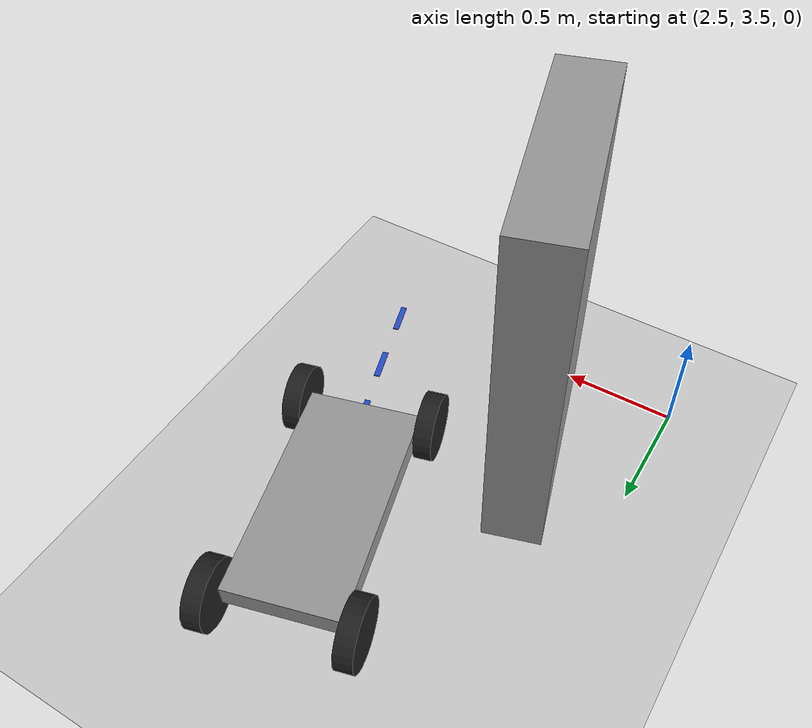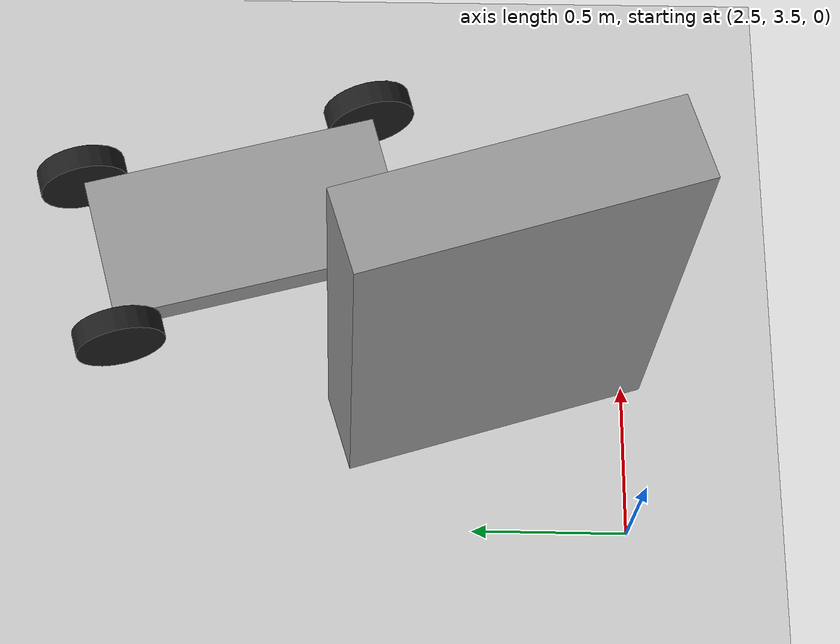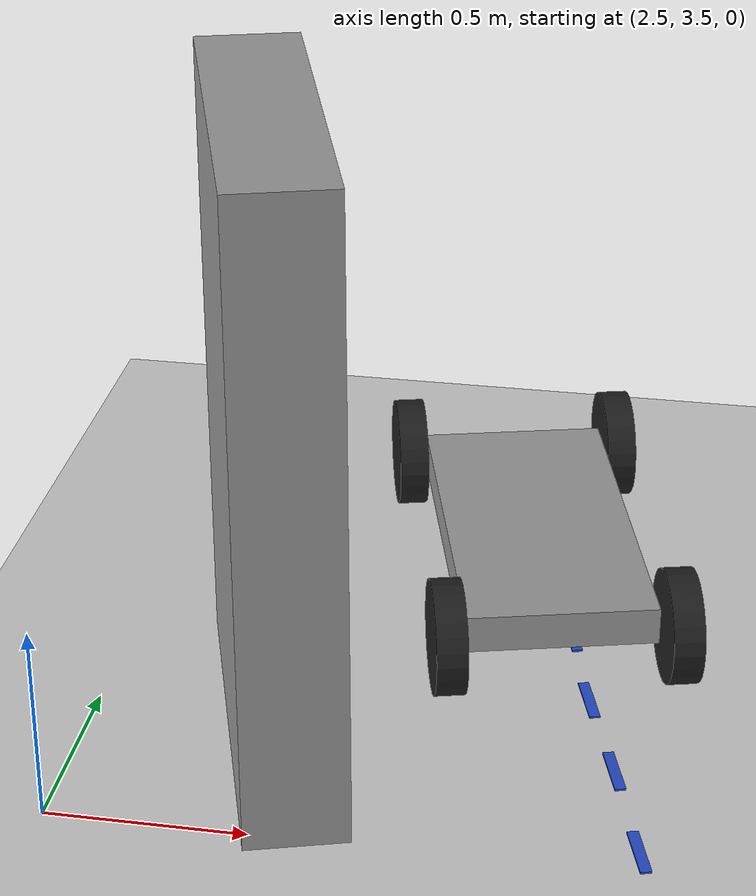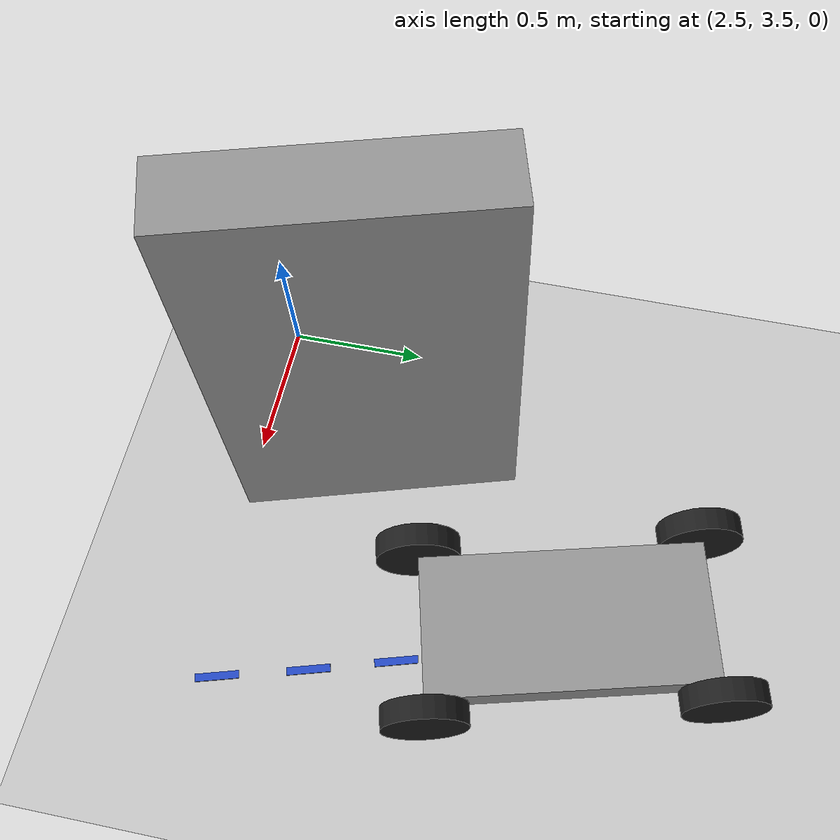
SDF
<sdf version="1.7">
 <world name="curve5">
  <model name="ground_plane">
   <static>1</static>
   <link name="link">
    <collision name="collision">
     <geometry><plane><normal>0 0 1</normal><size>100 100</size></plane></geometry>
     <surface><friction><ode><mu>100</mu><mu2>50</mu2></ode></friction></surface>
    </collision>
    <visual name="visual">
     <cast_shadows>0</cast_shadows>
     <geometry><plane><normal>0 0 1</normal><size>100 100</size></plane></geometry>
     <material>
      <script><uri>file://media/materials/scripts/gazebo.material</uri><name>Gazebo/Grey</name></script>
     </material>
    </visual>
   </link>
  </model>
  <model name="curveRoad_try4">
   <link name="link_clone_clone_clone_clone_2_clone_3_clone">
    <inertial>
     <mass>2.16157e-05</mass>
     <inertia>
      <ixx>1.43991e-09</ixx>
      <ixy>0</ixy>
      <ixz>0</ixz>
      <iyy>4.24872e-08</iyy>
      <iyz>0</iyz>
      <izz>4.38348e-08</izz>
     </inertia>
    </inertial>
    <pose>3.37828 2.67582 -7.1e-05 1.7e-05 5.8e-05 1.85957</pose>
    <visual name="visual">
     <geometry><box><size>0.153497 0.027816 0.005062</size></box></geometry>
     <material>
      <script><name>Gazebo/Blue</name><uri>file://media/materials/scripts/gazebo.material</uri></script>
      <shader type="pixel"><normal_map>__default__</normal_map></shader>
      <ambient>0 0 1 1</ambient>
      <diffuse>0 0 1 1</diffuse>
      <emissive>0 0 1 1</emissive>
      <specular>0 0 1 1</specular>
     </material>
    </visual>
    <collision name="collision">
     <geometry><box><size>0.153497 0.027816 0.005062</size></box></geometry>
     <surface>
      <friction>
       <ode><mu>1</mu><mu2>1</mu2><fdir1>0 0 0</fdir1><slip1>0</slip1><slip2>0</slip2></ode>
       <torsional>
        <coefficient>1</coefficient>
        <patch_radius>0</patch_radius>
        <surface_radius>0</surface_radius>
        <use_patch_radius>1</use_patch_radius>
        <ode><slip>0</slip></ode>
       </torsional>
      </friction>
      <bounce><restitution_coefficient>0</restitution_coefficient><threshold>1e+06</threshold></bounce>
      <contact>
       <collide_without_contact>0</collide_without_contact>
       <collide_without_contact_bitmask>1</collide_without_contact_bitmask>
       <collide_bitmask>1</collide_bitmask>
       <ode>
        <soft_cfm>0</soft_cfm>
        <soft_erp>0.2</soft_erp>
        <kp>1e+13</kp>
        <kd>1</kd>
        <max_vel>0.01</max_vel>
        <min_depth>0</min_depth>
       </ode>
       <bullet>
        <split_impulse>1</split_impulse>
        <split_impulse_penetration_threshold>-0.01</split_impulse_penetration_threshold>
        <soft_cfm>0</soft_cfm>
        <soft_erp>0.2</soft_erp>
        <kp>1e+13</kp>
        <kd>1</kd>
       </bullet>
      </contact>
     </surface>
    </collision>
   </link>
   <link name="link_clone_clone_clone_clone_2_clone_3_clone_0">
    <inertial>
     <mass>2.16157e-05</mass>
     <inertia>
      <ixx>1.43991e-09</ixx>
      <ixy>0</ixy>
      <ixz>0</ixz>
      <iyy>4.24872e-08</iyy>
      <iyz>0</iyz>
      <izz>4.38348e-08</izz>
     </inertia>
    </inertial>
    <pose>3.29222 2.98305 -7.6e-05 1.7e-05 5.8e-05 1.85957</pose>
    <visual name="visual">
     <geometry><box><size>0.153497 0.027816 0.005062</size></box></geometry>
     <material>
      <script><name>Gazebo/Blue</name><uri>file://media/materials/scripts/gazebo.material</uri></script>
      <shader type="pixel"><normal_map>__default__</normal_map></shader>
      <ambient>0 0 1 1</ambient>
      <diffuse>0 0 1 1</diffuse>
      <emissive>0 0 1 1</emissive>
      <specular>0 0 1 1</specular>
     </material>
    </visual>
    <collision name="collision">
     <geometry><box><size>0.153497 0.027816 0.005062</size></box></geometry>
     <surface>
      <friction>
       <ode><mu>1</mu><mu2>1</mu2><fdir1>0 0 0</fdir1><slip1>0</slip1><slip2>0</slip2></ode>
       <torsional>
        <coefficient>1</coefficient>
        <patch_radius>0</patch_radius>
        <surface_radius>0</surface_radius>
        <use_patch_radius>1</use_patch_radius>
        <ode><slip>0</slip></ode>
       </torsional>
      </friction>
      <bounce><restitution_coefficient>0</restitution_coefficient><threshold>1e+06</threshold></bounce>
      <contact>
       <collide_without_contact>0</collide_without_contact>
       <collide_without_contact_bitmask>1</collide_without_contact_bitmask>
       <collide_bitmask>1</collide_bitmask>
       <ode>
        <soft_cfm>0</soft_cfm>
        <soft_erp>0.2</soft_erp>
        <kp>1e+13</kp>
        <kd>1</kd>
        <max_vel>0.01</max_vel>
        <min_depth>0</min_depth>
       </ode>
       <bullet>
        <split_impulse>1</split_impulse>
        <split_impulse_penetration_threshold>-0.01</split_impulse_penetration_threshold>
        <soft_cfm>0</soft_cfm>
        <soft_erp>0.2</soft_erp>
        <kp>1e+13</kp>
        <kd>1</kd>
       </bullet>
      </contact>
     </surface>
    </collision>
   </link>
   <link name="link_clone_clone_clone_clone_2_clone_3_clone_1">
    <inertial>
     <mass>2.16157e-05</mass>
     <inertia>
      <ixx>1.43991e-09</ixx>
      <ixy>0</ixy>
      <ixz>0</ixz>
      <iyy>4.24872e-08</iyy>
      <iyz>0</iyz>
      <izz>4.38348e-08</izz>
     </inertia>
    </inertial>
    <pose>3.20139 3.27765 -8.1e-05 1.7e-05 5.8e-05 1.85957</pose>
    <visual name="visual">
     <geometry><box><size>0.153497 0.027816 0.005062</size></box></geometry>
     <material>
      <script><name>Gazebo/Blue</name><uri>file://media/materials/scripts/gazebo.material</uri></script>
      <shader type="pixel"><normal_map>__default__</normal_map></shader>
      <ambient>0 0 1 1</ambient>
      <diffuse>0 0 1 1</diffuse>
      <emissive>0 0 1 1</emissive>
      <specular>0 0 1 1</specular>
     </material>
    </visual>
    <collision name="collision">
     <geometry><box><size>0.153497 0.027816 0.005062</size></box></geometry>
     <surface>
      <friction>
       <ode><mu>1</mu><mu2>1</mu2><fdir1>0 0 0</fdir1><slip1>0</slip1><slip2>0</slip2></ode>
       <torsional>
        <coefficient>1</coefficient>
        <patch_radius>0</patch_radius>
        <surface_radius>0</surface_radius>
        <use_patch_radius>1</use_patch_radius>
        <ode><slip>0</slip></ode>
       </torsional>
      </friction>
      <bounce><restitution_coefficient>0</restitution_coefficient><threshold>1e+06</threshold></bounce>
      <contact>
       <collide_without_contact>0</collide_without_contact>
       <collide_without_contact_bitmask>1</collide_without_contact_bitmask>
       <collide_bitmask>1</collide_bitmask>
       <ode>
        <soft_cfm>0</soft_cfm>
        <soft_erp>0.2</soft_erp>
        <kp>1e+13</kp>
        <kd>1</kd>
        <max_vel>0.01</max_vel>
        <min_depth>0</min_depth>
       </ode>
       <bullet>
        <split_impulse>1</split_impulse>
        <split_impulse_penetration_threshold>-0.01</split_impulse_penetration_threshold>
        <soft_cfm>0</soft_cfm>
        <soft_erp>0.2</soft_erp>
        <kp>1e+13</kp>
        <kd>1</kd>
       </bullet>
      </contact>
     </surface>
    </collision>
   </link>
   <link name="link_clone_clone_clone_clone_2_clone_3_clone_1_clone">
    <inertial>
     <mass>2.16157e-05</mass>
     <inertia>
      <ixx>1.43991e-09</ixx>
      <ixy>0</ixy>
      <ixz>0</ixz>
      <iyy>4.24872e-08</iyy>
      <iyz>0</iyz>
      <izz>4.38348e-08</izz>
     </inertia>
    </inertial>
    <pose>3.12664 3.57467 -0.000118 2e-05 6.8e-05 1.85957</pose>
    <visual name="visual">
     <geometry><box><size>0.153497 0.027816 0.005062</size></box></geometry>
     <material>
      <script><name>Gazebo/Blue</name><uri>file://media/materials/scripts/gazebo.material</uri></script>
      <shader type="pixel"><normal_map>__default__</normal_map></shader>
      <ambient>0 0 1 1</ambient>
      <diffuse>0 0 1 1</diffuse>
      <emissive>0 0 1 1</emissive>
      <specular>0 0 1 1</specular>
     </material>
    </visual>
    <collision name="collision">
     <geometry><box><size>0.153497 0.027816 0.005062</size></box></geometry>
     <surface>
      <friction>
       <ode><mu>1</mu><mu2>1</mu2><fdir1>0 0 0</fdir1><slip1>0</slip1><slip2>0</slip2></ode>
       <torsional>
        <coefficient>1</coefficient>
        <patch_radius>0</patch_radius>
        <surface_radius>0</surface_radius>
        <use_patch_radius>1</use_patch_radius>
        <ode><slip>0</slip></ode>
       </torsional>
      </friction>
      <bounce><restitution_coefficient>0</restitution_coefficient><threshold>1e+06</threshold></bounce>
      <contact>
       <collide_without_contact>0</collide_without_contact>
       <collide_without_contact_bitmask>1</collide_without_contact_bitmask>
       <collide_bitmask>1</collide_bitmask>
       <ode>
        <soft_cfm>0</soft_cfm>
        <soft_erp>0.2</soft_erp>
        <kp>1e+13</kp>
        <kd>1</kd>
        <max_vel>0.01</max_vel>
        <min_depth>0</min_depth>
       </ode>
       <bullet>
        <split_impulse>1</split_impulse>
        <split_impulse_penetration_threshold>-0.01</split_impulse_penetration_threshold>
        <soft_cfm>0</soft_cfm>
        <soft_erp>0.2</soft_erp>
        <kp>1e+13</kp>
        <kd>1</kd>
       </bullet>
      </contact>
     </surface>
    </collision>
   </link>
   <static>1</static>
   <pose>0.52678 0.915402 5e-06 1e-05 -0 0</pose>
  </model>
  <model name="unit_box0_clone">
   <link name="link">
    <inertial>
     <mass>1</mass>
     <inertia>
      <ixx>0.166667</ixx>
      <ixy>0</ixy>
      <ixz>0</ixz>
      <iyy>0.166667</iyy>
      <iyz>0</iyz>
      <izz>0.166667</izz>
     </inertia>
    </inertial>
    <visual name="visual">
     <geometry><box><size>1 0.255546 1.62843</size></box></geometry>
     <material>
      <script><name>Gazebo/Grey</name><uri>file://media/materials/scripts/gazebo.material</uri></script>
      <shader type="pixel"/>
     </material>
    </visual>
    <collision name="collision">
     <geometry><box><size>1 0.255546 1.62843</size></box></geometry>
     <surface>
      <friction>
       <ode><mu>1</mu><mu2>1</mu2><fdir1>0 0 0</fdir1><slip1>0</slip1><slip2>0</slip2></ode>
       <torsional>
        <coefficient>1</coefficient>
        <patch_radius>0</patch_radius>
        <surface_radius>0</surface_radius>
        <use_patch_radius>1</use_patch_radius>
        <ode><slip>0</slip></ode>
       </torsional>
      </friction>
      <bounce><restitution_coefficient>0</restitution_coefficient><threshold>1e+06</threshold></bounce>
      <contact>
       <collide_without_contact>0</collide_without_contact>
       <collide_without_contact_bitmask>1</collide_without_contact_bitmask>
       <collide_bitmask>1</collide_bitmask>
       <ode>
        <soft_cfm>0</soft_cfm>
        <soft_erp>0.2</soft_erp>
        <kp>1e+13</kp>
        <kd>1</kd>
        <max_vel>0.01</max_vel>
        <min_depth>0</min_depth>
       </ode>
       <bullet>
        <split_impulse>1</split_impulse>
        <split_impulse_penetration_threshold>-0.01</split_impulse_penetration_threshold>
        <soft_cfm>0</soft_cfm>
        <soft_erp>0.2</soft_erp>
        <kp>1e+13</kp>
        <kd>1</kd>
       </bullet>
      </contact>
     </surface>
    </collision>
   </link>
   <static>0</static>
   <pose>2.97563 3.9558 0.814215 -0 -1e-06 -1.27602</pose>
  </model>
  <model name="cart_rigid_suspension_clone_clone">
   <link name="chassis">
    <pose>0 0 0.15 0 -0 0</pose>
    <inertial>
     <pose>0.1 0 0 0 -0 0</pose>
     <mass>10</mass>
     <inertia>
      <ixx>0.216667</ixx>
      <iyy>0.841667</iyy>
      <izz>1.04167</izz>
      <ixy>0</ixy>
      <ixz>0</ixz>
      <iyz>0</iyz>
     </inertia>
    </inertial>
    <visual name="visual">
     <geometry><box><size>1 0.5 0.1</size></box></geometry>
     <material>
      <script><uri>file://media/materials/scripts/gazebo.material</uri><name>Gazebo/Grey</name></script>
      <shader type="pixel"/>
     </material>
    </visual>
    <collision name="collision">
     <geometry><box><size>1 0.5 0.1</size></box></geometry>
     <surface>
      <friction>
       <ode><mu>1</mu><mu2>1</mu2><fdir1>0 0 0</fdir1><slip1>0</slip1><slip2>0</slip2></ode>
       <torsional>
        <coefficient>1</coefficient>
        <patch_radius>0</patch_radius>
        <surface_radius>0</surface_radius>
        <use_patch_radius>1</use_patch_radius>
        <ode><slip>0</slip></ode>
       </torsional>
      </friction>
      <bounce><restitution_coefficient>0</restitution_coefficient><threshold>1e+06</threshold></bounce>
      <contact>
       <collide_without_contact>0</collide_without_contact>
       <collide_without_contact_bitmask>1</collide_without_contact_bitmask>
       <collide_bitmask>1</collide_bitmask>
       <ode>
        <soft_cfm>0</soft_cfm>
        <soft_erp>0.2</soft_erp>
        <kp>1e+13</kp>
        <kd>1</kd>
        <max_vel>0.01</max_vel>
        <min_depth>0</min_depth>
       </ode>
       <bullet>
        <split_impulse>1</split_impulse>
        <split_impulse_penetration_threshold>-0.01</split_impulse_penetration_threshold>
        <soft_cfm>0</soft_cfm>
        <soft_erp>0.2</soft_erp>
        <kp>1e+13</kp>
        <kd>1</kd>
       </bullet>
      </contact>
     </surface>
    </collision>
   </link>
   <link name="wheel_front_left">
    <pose>0.5 0.298 0.15 -1.5708 -0 -0</pose>
    <inertial>
     <mass>0.5</mass>
     <inertia>
      <ixx>0.00307917</ixx>
      <iyy>0.00307917</iyy>
      <izz>0.005625</izz>
      <ixy>0</ixy>
      <ixz>0</ixz>
      <iyz>0</iyz>
     </inertia>
    </inertial>
    <visual name="visual">
     <geometry><cylinder><radius>0.15</radius><length>0.08</length></cylinder></geometry>
     <material>
      <script><uri>file://media/materials/scripts/gazebo.material</uri><name>Gazebo/Black</name></script>
      <shader type="pixel"/>
     </material>
    </visual>
    <collision name="collision">
     <geometry><cylinder><radius>0.15</radius><length>0.08</length></cylinder></geometry>
     <surface>
      <friction>
       <ode><mu>1</mu><mu2>1</mu2><fdir1>0 0 0</fdir1><slip1>0</slip1><slip2>0</slip2></ode>
       <torsional>
        <coefficient>1</coefficient>
        <patch_radius>0</patch_radius>
        <surface_radius>0</surface_radius>
        <use_patch_radius>1</use_patch_radius>
        <ode><slip>0</slip></ode>
       </torsional>
      </friction>
      <bounce><restitution_coefficient>0</restitution_coefficient><threshold>1e+06</threshold></bounce>
      <contact>
       <collide_without_contact>0</collide_without_contact>
       <collide_without_contact_bitmask>1</collide_without_contact_bitmask>
       <collide_bitmask>1</collide_bitmask>
       <ode>
        <soft_cfm>0</soft_cfm>
        <soft_erp>0.2</soft_erp>
        <kp>1e+13</kp>
        <kd>1</kd>
        <max_vel>0.01</max_vel>
        <min_depth>0</min_depth>
       </ode>
       <bullet>
        <split_impulse>1</split_impulse>
        <split_impulse_penetration_threshold>-0.01</split_impulse_penetration_threshold>
        <soft_cfm>0</soft_cfm>
        <soft_erp>0.2</soft_erp>
        <kp>1e+13</kp>
        <kd>1</kd>
       </bullet>
      </contact>
     </surface>
    </collision>
   </link>
   <link name="wheel_front_right">
    <pose>0.5 -0.298 0.15 -1.5708 -0 -0</pose>
    <inertial>
     <mass>0.5</mass>
     <inertia>
      <ixx>0.00307917</ixx>
      <iyy>0.00307917</iyy>
      <izz>0.005625</izz>
      <ixy>0</ixy>
      <ixz>0</ixz>
      <iyz>0</iyz>
     </inertia>
    </inertial>
    <visual name="visual">
     <geometry><cylinder><radius>0.15</radius><length>0.08</length></cylinder></geometry>
     <material>
      <script><uri>file://media/materials/scripts/gazebo.material</uri><name>Gazebo/Black</name></script>
      <shader type="pixel"/>
     </material>
    </visual>
    <collision name="collision">
     <geometry><cylinder><radius>0.15</radius><length>0.08</length></cylinder></geometry>
     <surface>
      <friction>
       <ode><mu>1</mu><mu2>1</mu2><fdir1>0 0 0</fdir1><slip1>0</slip1><slip2>0</slip2></ode>
       <torsional>
        <coefficient>1</coefficient>
        <patch_radius>0</patch_radius>
        <surface_radius>0</surface_radius>
        <use_patch_radius>1</use_patch_radius>
        <ode><slip>0</slip></ode>
       </torsional>
      </friction>
      <bounce><restitution_coefficient>0</restitution_coefficient><threshold>1e+06</threshold></bounce>
      <contact>
       <collide_without_contact>0</collide_without_contact>
       <collide_without_contact_bitmask>1</collide_without_contact_bitmask>
       <collide_bitmask>1</collide_bitmask>
       <ode>
        <soft_cfm>0</soft_cfm>
        <soft_erp>0.2</soft_erp>
        <kp>1e+13</kp>
        <kd>1</kd>
        <max_vel>0.01</max_vel>
        <min_depth>0</min_depth>
       </ode>
       <bullet>
        <split_impulse>1</split_impulse>
        <split_impulse_penetration_threshold>-0.01</split_impulse_penetration_threshold>
        <soft_cfm>0</soft_cfm>
        <soft_erp>0.2</soft_erp>
        <kp>1e+13</kp>
        <kd>1</kd>
       </bullet>
      </contact>
     </surface>
    </collision>
   </link>
   <link name="wheel_rear_left">
    <pose>-0.5 0.298 0.15 -1.5708 -0 -0</pose>
    <inertial>
     <mass>0.5</mass>
     <inertia>
      <ixx>0.00307917</ixx>
      <iyy>0.00307917</iyy>
      <izz>0.005625</izz>
      <ixy>0</ixy>
      <ixz>0</ixz>
      <iyz>0</iyz>
     </inertia>
    </inertial>
    <visual name="visual">
     <geometry><cylinder><radius>0.15</radius><length>0.08</length></cylinder></geometry>
     <material>
      <script><uri>file://media/materials/scripts/gazebo.material</uri><name>Gazebo/Black</name></script>
      <shader type="pixel"/>
     </material>
    </visual>
    <collision name="collision">
     <geometry><cylinder><radius>0.15</radius><length>0.08</length></cylinder></geometry>
     <surface>
      <friction>
       <ode><mu>1</mu><mu2>1</mu2><fdir1>0 0 0</fdir1><slip1>0</slip1><slip2>0</slip2></ode>
       <torsional>
        <coefficient>1</coefficient>
        <patch_radius>0</patch_radius>
        <surface_radius>0</surface_radius>
        <use_patch_radius>1</use_patch_radius>
        <ode><slip>0</slip></ode>
       </torsional>
      </friction>
      <bounce><restitution_coefficient>0</restitution_coefficient><threshold>1e+06</threshold></bounce>
      <contact>
       <collide_without_contact>0</collide_without_contact>
       <collide_without_contact_bitmask>1</collide_without_contact_bitmask>
       <collide_bitmask>1</collide_bitmask>
       <ode>
        <soft_cfm>0</soft_cfm>
        <soft_erp>0.2</soft_erp>
        <kp>1e+13</kp>
        <kd>1</kd>
        <max_vel>0.01</max_vel>
        <min_depth>0</min_depth>
       </ode>
       <bullet>
        <split_impulse>1</split_impulse>
        <split_impulse_penetration_threshold>-0.01</split_impulse_penetration_threshold>
        <soft_cfm>0</soft_cfm>
        <soft_erp>0.2</soft_erp>
        <kp>1e+13</kp>
        <kd>1</kd>
       </bullet>
      </contact>
     </surface>
    </collision>
   </link>
   <link name="wheel_rear_right">
    <pose>-0.5 -0.298 0.15 -1.5708 -0 -0</pose>
    <inertial>
     <mass>0.5</mass>
     <inertia>
      <ixx>0.00307917</ixx>
      <iyy>0.00307917</iyy>
      <izz>0.005625</izz>
      <ixy>0</ixy>
      <ixz>0</ixz>
      <iyz>0</iyz>
     </inertia>
    </inertial>
    <visual name="visual">
     <geometry><cylinder><radius>0.15</radius><length>0.08</length></cylinder></geometry>
     <material>
      <script><uri>file://media/materials/scripts/gazebo.material</uri><name>Gazebo/Black</name></script>
      <shader type="pixel"/>
     </material>
    </visual>
    <collision name="collision">
     <geometry><cylinder><radius>0.15</radius><length>0.08</length></cylinder></geometry>
     <surface>
      <friction>
       <ode><mu>1</mu><mu2>1</mu2><fdir1>0 0 0</fdir1><slip1>0</slip1><slip2>0</slip2></ode>
       <torsional>
        <coefficient>1</coefficient>
        <patch_radius>0</patch_radius>
        <surface_radius>0</surface_radius>
        <use_patch_radius>1</use_patch_radius>
        <ode><slip>0</slip></ode>
       </torsional>
      </friction>
      <bounce><restitution_coefficient>0</restitution_coefficient><threshold>1e+06</threshold></bounce>
      <contact>
       <collide_without_contact>0</collide_without_contact>
       <collide_without_contact_bitmask>1</collide_without_contact_bitmask>
       <collide_bitmask>1</collide_bitmask>
       <ode>
        <soft_cfm>0</soft_cfm>
        <soft_erp>0.2</soft_erp>
        <kp>1e+13</kp>
        <kd>1</kd>
        <max_vel>0.01</max_vel>
        <min_depth>0</min_depth>
       </ode>
       <bullet>
        <split_impulse>1</split_impulse>
        <split_impulse_penetration_threshold>-0.01</split_impulse_penetration_threshold>
        <soft_cfm>0</soft_cfm>
        <soft_erp>0.2</soft_erp>
        <kp>1e+13</kp>
        <kd>1</kd>
       </bullet>
      </contact>
     </surface>
    </collision>
   </link>
   <joint name="wheel_front_left_spin" type="revolute">
    <parent>chassis</parent>
    <child>wheel_front_left</child>
    <axis>
     <xyz>0 0 1</xyz>
     <limit><lower>-1e+16</lower><upper>1e+16</upper><effort>-1</effort><velocity>-1</velocity></limit>
     <dynamics>
      <spring_reference>0</spring_reference>
      <spring_stiffness>0</spring_stiffness>
      <damping>0</damping>
      <friction>0</friction>
     </dynamics>
    </axis>
    <physics>
     <ode><limit><cfm>0</cfm><erp>0.2</erp></limit><suspension><cfm>0</cfm><erp>0.2</erp></suspension></ode>
    </physics>
   </joint>
   <joint name="wheel_front_right_spin" type="revolute">
    <parent>chassis</parent>
    <child>wheel_front_right</child>
    <axis>
     <xyz>0 0 1</xyz>
     <limit><lower>-1e+16</lower><upper>1e+16</upper><effort>-1</effort><velocity>-1</velocity></limit>
     <dynamics>
      <spring_reference>0</spring_reference>
      <spring_stiffness>0</spring_stiffness>
      <damping>0</damping>
      <friction>0</friction>
     </dynamics>
    </axis>
    <physics>
     <ode><limit><cfm>0</cfm><erp>0.2</erp></limit><suspension><cfm>0</cfm><erp>0.2</erp></suspension></ode>
    </physics>
   </joint>
   <joint name="wheel_rear_left_spin" type="revolute">
    <parent>chassis</parent>
    <child>wheel_rear_left</child>
    <axis>
     <xyz>0 0 1</xyz>
     <limit><lower>-1e+16</lower><upper>1e+16</upper><effort>-1</effort><velocity>-1</velocity></limit>
     <dynamics>
      <spring_reference>0</spring_reference>
      <spring_stiffness>0</spring_stiffness>
      <damping>0</damping>
      <friction>0</friction>
     </dynamics>
    </axis>
    <physics>
     <ode><limit><cfm>0</cfm><erp>0.2</erp></limit><suspension><cfm>0</cfm><erp>0.2</erp></suspension></ode>
    </physics>
   </joint>
   <joint name="wheel_rear_right_spin" type="revolute">
    <parent>chassis</parent>
    <child>wheel_rear_right</child>
    <axis>
     <xyz>0 0 1</xyz>
     <limit><lower>-1e+16</lower><upper>1e+16</upper><effort>-1</effort><velocity>-1</velocity></limit>
     <dynamics>
      <spring_reference>0</spring_reference>
      <spring_stiffness>0</spring_stiffness>
      <damping>0</damping>
      <friction>0</friction>
     </dynamics>
    </axis>
    <physics>
     <ode><limit><cfm>0</cfm><erp>0.2</erp></limit><suspension><cfm>0</cfm><erp>0.2</erp></suspension></ode>
    </physics>
   </joint>
   <static>0</static>
   <pose>3.52025 4.75494 0 1e-06 -0 -1.31241</pose>
  </model>
 </world>
</sdf>
